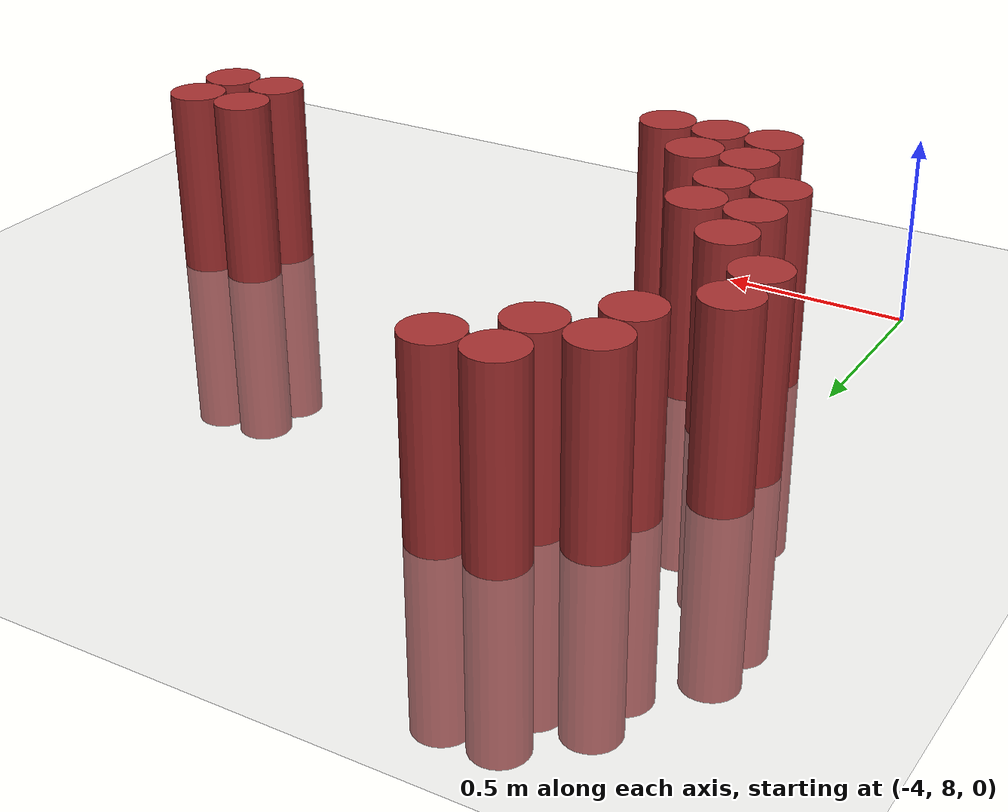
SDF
<sdf version="1.6">
 <world name="default">
  <model name="ground_plane">
   <static>1</static>
   <link name="link">
    <collision name="collision">
     <geometry><plane><normal>0 0 1</normal><size>100 100</size></plane></geometry>
     <surface><friction><ode><mu>100</mu><mu2>50</mu2></ode></friction></surface>
    </collision>
    <visual name="visual">
     <cast_shadows>0</cast_shadows>
     <geometry><plane><normal>0 0 1</normal><size>100 100</size></plane></geometry>
     <material>
      <script><uri>file://media/materials/scripts/gazebo.material</uri><name>Gazebo/Grey</name></script>
     </material>
    </visual>
   </link>
  </model>
  <model name="unit_cylinder_156">
   <static>1</static>
   <pose>-3.975000 8.925000 0.000000 0.000000 0.000000 0.000000</pose>
   <link name="link">
    <inertial>
     <mass>1</mass>
     <inertia><ixx>0.145833</ixx><ixy>0</ixy><ixz>0</ixz><iyy>0.145833</iyy><iyz>0</iyz><izz>0.125</izz></inertia>
    </inertial>
    <collision name="collision">
     <geometry><cylinder><radius>0.075000</radius><length>1</length></cylinder></geometry>
    </collision>
    <visual name="visual">
     <geometry><cylinder><radius>0.075000</radius><length>1</length></cylinder></geometry>
     <material>
      <ambient>0.648000 0.192000 0.192000 1</ambient>
      <diffuse>0.648000 0.192000 0.192000 1</diffuse>
     </material>
     <material>
      <script><name>Gazebo/Grey</name><uri>file://media/materials/scripts/gazebo.material</uri></script>
     </material>
    </visual>
    <sensor name="sensor_contact" type="contact"><contact><collision>collision</collision></contact></sensor>
   </link>
   <plugin filename="gz-sim-touchplugin-system" name="gz::sim::systems::TouchPlugin">
    <target>robot</target>
    <namespace>robot</namespace>
    <time>0.001</time>
    <enabled>true</enabled>
   </plugin>
  </model>
  <model name="unit_cylinder_157">
   <static>1</static>
   <pose>-3.975000 9.075000 0.000000 0.000000 0.000000 0.000000</pose>
   <link name="link">
    <inertial>
     <mass>1</mass>
     <inertia><ixx>0.145833</ixx><ixy>0</ixy><ixz>0</ixz><iyy>0.145833</iyy><iyz>0</iyz><izz>0.125</izz></inertia>
    </inertial>
    <collision name="collision">
     <geometry><cylinder><radius>0.075000</radius><length>1</length></cylinder></geometry>
    </collision>
    <visual name="visual">
     <geometry><cylinder><radius>0.075000</radius><length>1</length></cylinder></geometry>
     <material>
      <ambient>0.648000 0.192000 0.192000 1</ambient>
      <diffuse>0.648000 0.192000 0.192000 1</diffuse>
     </material>
     <material>
      <script><name>Gazebo/Grey</name><uri>file://media/materials/scripts/gazebo.material</uri></script>
     </material>
    </visual>
    <sensor name="sensor_contact" type="contact"><contact><collision>collision</collision></contact></sensor>
   </link>
   <plugin filename="gz-sim-touchplugin-system" name="gz::sim::systems::TouchPlugin">
    <target>robot</target>
    <namespace>robot</namespace>
    <time>0.001</time>
    <enabled>true</enabled>
   </plugin>
  </model>
  <model name="unit_cylinder_161">
   <static>1</static>
   <pose>-3.825000 8.475000 0.000000 0.000000 0.000000 0.000000</pose>
   <link name="link">
    <inertial>
     <mass>1</mass>
     <inertia><ixx>0.145833</ixx><ixy>0</ixy><ixz>0</ixz><iyy>0.145833</iyy><iyz>0</iyz><izz>0.125</izz></inertia>
    </inertial>
    <collision name="collision">
     <geometry><cylinder><radius>0.075000</radius><length>1</length></cylinder></geometry>
    </collision>
    <visual name="visual">
     <geometry><cylinder><radius>0.075000</radius><length>1</length></cylinder></geometry>
     <material>
      <ambient>0.648000 0.192000 0.192000 1</ambient>
      <diffuse>0.648000 0.192000 0.192000 1</diffuse>
     </material>
     <material>
      <script><name>Gazebo/Grey</name><uri>file://media/materials/scripts/gazebo.material</uri></script>
     </material>
    </visual>
    <sensor name="sensor_contact" type="contact"><contact><collision>collision</collision></contact></sensor>
   </link>
   <plugin filename="gz-sim-touchplugin-system" name="gz::sim::systems::TouchPlugin">
    <target>robot</target>
    <namespace>robot</namespace>
    <time>0.001</time>
    <enabled>true</enabled>
   </plugin>
  </model>
  <model name="unit_cylinder_162">
   <static>1</static>
   <pose>-3.825000 8.625000 0.000000 0.000000 0.000000 0.000000</pose>
   <link name="link">
    <inertial>
     <mass>1</mass>
     <inertia><ixx>0.145833</ixx><ixy>0</ixy><ixz>0</ixz><iyy>0.145833</iyy><iyz>0</iyz><izz>0.125</izz></inertia>
    </inertial>
    <collision name="collision">
     <geometry><cylinder><radius>0.075000</radius><length>1</length></cylinder></geometry>
    </collision>
    <visual name="visual">
     <geometry><cylinder><radius>0.075000</radius><length>1</length></cylinder></geometry>
     <material>
      <ambient>0.648000 0.192000 0.192000 1</ambient>
      <diffuse>0.648000 0.192000 0.192000 1</diffuse>
     </material>
     <material>
      <script><name>Gazebo/Grey</name><uri>file://media/materials/scripts/gazebo.material</uri></script>
     </material>
    </visual>
    <sensor name="sensor_contact" type="contact"><contact><collision>collision</collision></contact></sensor>
   </link>
   <plugin filename="gz-sim-touchplugin-system" name="gz::sim::systems::TouchPlugin">
    <target>robot</target>
    <namespace>robot</namespace>
    <time>0.001</time>
    <enabled>true</enabled>
   </plugin>
  </model>
  <model name="unit_cylinder_163">
   <static>1</static>
   <pose>-3.825000 8.775000 0.000000 0.000000 0.000000 0.000000</pose>
   <link name="link">
    <inertial>
     <mass>1</mass>
     <inertia><ixx>0.145833</ixx><ixy>0</ixy><ixz>0</ixz><iyy>0.145833</iyy><iyz>0</iyz><izz>0.125</izz></inertia>
    </inertial>
    <collision name="collision">
     <geometry><cylinder><radius>0.075000</radius><length>1</length></cylinder></geometry>
    </collision>
    <visual name="visual">
     <geometry><cylinder><radius>0.075000</radius><length>1</length></cylinder></geometry>
     <material>
      <ambient>0.648000 0.192000 0.192000 1</ambient>
      <diffuse>0.648000 0.192000 0.192000 1</diffuse>
     </material>
     <material>
      <script><name>Gazebo/Grey</name><uri>file://media/materials/scripts/gazebo.material</uri></script>
     </material>
    </visual>
    <sensor name="sensor_contact" type="contact"><contact><collision>collision</collision></contact></sensor>
   </link>
   <plugin filename="gz-sim-touchplugin-system" name="gz::sim::systems::TouchPlugin">
    <target>robot</target>
    <namespace>robot</namespace>
    <time>0.001</time>
    <enabled>true</enabled>
   </plugin>
  </model>
  <model name="unit_cylinder_164">
   <static>1</static>
   <pose>-3.825000 9.225000 0.000000 0.000000 0.000000 0.000000</pose>
   <link name="link">
    <inertial>
     <mass>1</mass>
     <inertia><ixx>0.145833</ixx><ixy>0</ixy><ixz>0</ixz><iyy>0.145833</iyy><iyz>0</iyz><izz>0.125</izz></inertia>
    </inertial>
    <collision name="collision">
     <geometry><cylinder><radius>0.075000</radius><length>1</length></cylinder></geometry>
    </collision>
    <visual name="visual">
     <geometry><cylinder><radius>0.075000</radius><length>1</length></cylinder></geometry>
     <material>
      <ambient>0.648000 0.192000 0.192000 1</ambient>
      <diffuse>0.648000 0.192000 0.192000 1</diffuse>
     </material>
     <material>
      <script><name>Gazebo/Grey</name><uri>file://media/materials/scripts/gazebo.material</uri></script>
     </material>
    </visual>
    <sensor name="sensor_contact" type="contact"><contact><collision>collision</collision></contact></sensor>
   </link>
   <plugin filename="gz-sim-touchplugin-system" name="gz::sim::systems::TouchPlugin">
    <target>robot</target>
    <namespace>robot</namespace>
    <time>0.001</time>
    <enabled>true</enabled>
   </plugin>
  </model>
  <model name="unit_cylinder_165">
   <static>1</static>
   <pose>-3.825000 9.375000 0.000000 0.000000 0.000000 0.000000</pose>
   <link name="link">
    <inertial>
     <mass>1</mass>
     <inertia><ixx>0.145833</ixx><ixy>0</ixy><ixz>0</ixz><iyy>0.145833</iyy><iyz>0</iyz><izz>0.125</izz></inertia>
    </inertial>
    <collision name="collision">
     <geometry><cylinder><radius>0.075000</radius><length>1</length></cylinder></geometry>
    </collision>
    <visual name="visual">
     <geometry><cylinder><radius>0.075000</radius><length>1</length></cylinder></geometry>
     <material>
      <ambient>0.648000 0.192000 0.192000 1</ambient>
      <diffuse>0.648000 0.192000 0.192000 1</diffuse>
     </material>
     <material>
      <script><name>Gazebo/Grey</name><uri>file://media/materials/scripts/gazebo.material</uri></script>
     </material>
    </visual>
    <sensor name="sensor_contact" type="contact"><contact><collision>collision</collision></contact></sensor>
   </link>
   <plugin filename="gz-sim-touchplugin-system" name="gz::sim::systems::TouchPlugin">
    <target>robot</target>
    <namespace>robot</namespace>
    <time>0.001</time>
    <enabled>true</enabled>
   </plugin>
  </model>
  <model name="unit_cylinder_169">
   <static>1</static>
   <pose>-3.675000 8.175000 0.000000 0.000000 0.000000 0.000000</pose>
   <link name="link">
    <inertial>
     <mass>1</mass>
     <inertia><ixx>0.145833</ixx><ixy>0</ixy><ixz>0</ixz><iyy>0.145833</iyy><iyz>0</iyz><izz>0.125</izz></inertia>
    </inertial>
    <collision name="collision">
     <geometry><cylinder><radius>0.075000</radius><length>1</length></cylinder></geometry>
    </collision>
    <visual name="visual">
     <geometry><cylinder><radius>0.075000</radius><length>1</length></cylinder></geometry>
     <material>
      <ambient>0.648000 0.192000 0.192000 1</ambient>
      <diffuse>0.648000 0.192000 0.192000 1</diffuse>
     </material>
     <material>
      <script><name>Gazebo/Grey</name><uri>file://media/materials/scripts/gazebo.material</uri></script>
     </material>
    </visual>
    <sensor name="sensor_contact" type="contact"><contact><collision>collision</collision></contact></sensor>
   </link>
   <plugin filename="gz-sim-touchplugin-system" name="gz::sim::systems::TouchPlugin">
    <target>robot</target>
    <namespace>robot</namespace>
    <time>0.001</time>
    <enabled>true</enabled>
   </plugin>
  </model>
  <model name="unit_cylinder_170">
   <static>1</static>
   <pose>-3.675000 8.325000 0.000000 0.000000 0.000000 0.000000</pose>
   <link name="link">
    <inertial>
     <mass>1</mass>
     <inertia><ixx>0.145833</ixx><ixy>0</ixy><ixz>0</ixz><iyy>0.145833</iyy><iyz>0</iyz><izz>0.125</izz></inertia>
    </inertial>
    <collision name="collision">
     <geometry><cylinder><radius>0.075000</radius><length>1</length></cylinder></geometry>
    </collision>
    <visual name="visual">
     <geometry><cylinder><radius>0.075000</radius><length>1</length></cylinder></geometry>
     <material>
      <ambient>0.648000 0.192000 0.192000 1</ambient>
      <diffuse>0.648000 0.192000 0.192000 1</diffuse>
     </material>
     <material>
      <script><name>Gazebo/Grey</name><uri>file://media/materials/scripts/gazebo.material</uri></script>
     </material>
    </visual>
    <sensor name="sensor_contact" type="contact"><contact><collision>collision</collision></contact></sensor>
   </link>
   <plugin filename="gz-sim-touchplugin-system" name="gz::sim::systems::TouchPlugin">
    <target>robot</target>
    <namespace>robot</namespace>
    <time>0.001</time>
    <enabled>true</enabled>
   </plugin>
  </model>
  <model name="unit_cylinder_171">
   <static>1</static>
   <pose>-3.675000 8.475000 0.000000 0.000000 0.000000 0.000000</pose>
   <link name="link">
    <inertial>
     <mass>1</mass>
     <inertia><ixx>0.145833</ixx><ixy>0</ixy><ixz>0</ixz><iyy>0.145833</iyy><iyz>0</iyz><izz>0.125</izz></inertia>
    </inertial>
    <collision name="collision">
     <geometry><cylinder><radius>0.075000</radius><length>1</length></cylinder></geometry>
    </collision>
    <visual name="visual">
     <geometry><cylinder><radius>0.075000</radius><length>1</length></cylinder></geometry>
     <material>
      <ambient>0.648000 0.192000 0.192000 1</ambient>
      <diffuse>0.648000 0.192000 0.192000 1</diffuse>
     </material>
     <material>
      <script><name>Gazebo/Grey</name><uri>file://media/materials/scripts/gazebo.material</uri></script>
     </material>
    </visual>
    <sensor name="sensor_contact" type="contact"><contact><collision>collision</collision></contact></sensor>
   </link>
   <plugin filename="gz-sim-touchplugin-system" name="gz::sim::systems::TouchPlugin">
    <target>robot</target>
    <namespace>robot</namespace>
    <time>0.001</time>
    <enabled>true</enabled>
   </plugin>
  </model>
  <model name="unit_cylinder_172">
   <static>1</static>
   <pose>-3.675000 8.625000 0.000000 0.000000 0.000000 0.000000</pose>
   <link name="link">
    <inertial>
     <mass>1</mass>
     <inertia><ixx>0.145833</ixx><ixy>0</ixy><ixz>0</ixz><iyy>0.145833</iyy><iyz>0</iyz><izz>0.125</izz></inertia>
    </inertial>
    <collision name="collision">
     <geometry><cylinder><radius>0.075000</radius><length>1</length></cylinder></geometry>
    </collision>
    <visual name="visual">
     <geometry><cylinder><radius>0.075000</radius><length>1</length></cylinder></geometry>
     <material>
      <ambient>0.648000 0.192000 0.192000 1</ambient>
      <diffuse>0.648000 0.192000 0.192000 1</diffuse>
     </material>
     <material>
      <script><name>Gazebo/Grey</name><uri>file://media/materials/scripts/gazebo.material</uri></script>
     </material>
    </visual>
    <sensor name="sensor_contact" type="contact"><contact><collision>collision</collision></contact></sensor>
   </link>
   <plugin filename="gz-sim-touchplugin-system" name="gz::sim::systems::TouchPlugin">
    <target>robot</target>
    <namespace>robot</namespace>
    <time>0.001</time>
    <enabled>true</enabled>
   </plugin>
  </model>
  <model name="unit_cylinder_173">
   <static>1</static>
   <pose>-3.675000 9.375000 0.000000 0.000000 0.000000 0.000000</pose>
   <link name="link">
    <inertial>
     <mass>1</mass>
     <inertia><ixx>0.145833</ixx><ixy>0</ixy><ixz>0</ixz><iyy>0.145833</iyy><iyz>0</iyz><izz>0.125</izz></inertia>
    </inertial>
    <collision name="collision">
     <geometry><cylinder><radius>0.075000</radius><length>1</length></cylinder></geometry>
    </collision>
    <visual name="visual">
     <geometry><cylinder><radius>0.075000</radius><length>1</length></cylinder></geometry>
     <material>
      <ambient>0.648000 0.192000 0.192000 1</ambient>
      <diffuse>0.648000 0.192000 0.192000 1</diffuse>
     </material>
     <material>
      <script><name>Gazebo/Grey</name><uri>file://media/materials/scripts/gazebo.material</uri></script>
     </material>
    </visual>
    <sensor name="sensor_contact" type="contact"><contact><collision>collision</collision></contact></sensor>
   </link>
   <plugin filename="gz-sim-touchplugin-system" name="gz::sim::systems::TouchPlugin">
    <target>robot</target>
    <namespace>robot</namespace>
    <time>0.001</time>
    <enabled>true</enabled>
   </plugin>
  </model>
  <model name="unit_cylinder_174">
   <static>1</static>
   <pose>-3.675000 9.525000 0.000000 0.000000 0.000000 0.000000</pose>
   <link name="link">
    <inertial>
     <mass>1</mass>
     <inertia><ixx>0.145833</ixx><ixy>0</ixy><ixz>0</ixz><iyy>0.145833</iyy><iyz>0</iyz><izz>0.125</izz></inertia>
    </inertial>
    <collision name="collision">
     <geometry><cylinder><radius>0.075000</radius><length>1</length></cylinder></geometry>
    </collision>
    <visual name="visual">
     <geometry><cylinder><radius>0.075000</radius><length>1</length></cylinder></geometry>
     <material>
      <ambient>0.648000 0.192000 0.192000 1</ambient>
      <diffuse>0.648000 0.192000 0.192000 1</diffuse>
     </material>
     <material>
      <script><name>Gazebo/Grey</name><uri>file://media/materials/scripts/gazebo.material</uri></script>
     </material>
    </visual>
    <sensor name="sensor_contact" type="contact"><contact><collision>collision</collision></contact></sensor>
   </link>
   <plugin filename="gz-sim-touchplugin-system" name="gz::sim::systems::TouchPlugin">
    <target>robot</target>
    <namespace>robot</namespace>
    <time>0.001</time>
    <enabled>true</enabled>
   </plugin>
  </model>
  <model name="unit_cylinder_180">
   <static>1</static>
   <pose>-3.525000 8.175000 0.000000 0.000000 0.000000 0.000000</pose>
   <link name="link">
    <inertial>
     <mass>1</mass>
     <inertia><ixx>0.145833</ixx><ixy>0</ixy><ixz>0</ixz><iyy>0.145833</iyy><iyz>0</iyz><izz>0.125</izz></inertia>
    </inertial>
    <collision name="collision">
     <geometry><cylinder><radius>0.075000</radius><length>1</length></cylinder></geometry>
    </collision>
    <visual name="visual">
     <geometry><cylinder><radius>0.075000</radius><length>1</length></cylinder></geometry>
     <material>
      <ambient>0.648000 0.192000 0.192000 1</ambient>
      <diffuse>0.648000 0.192000 0.192000 1</diffuse>
     </material>
     <material>
      <script><name>Gazebo/Grey</name><uri>file://media/materials/scripts/gazebo.material</uri></script>
     </material>
    </visual>
    <sensor name="sensor_contact" type="contact"><contact><collision>collision</collision></contact></sensor>
   </link>
   <plugin filename="gz-sim-touchplugin-system" name="gz::sim::systems::TouchPlugin">
    <target>robot</target>
    <namespace>robot</namespace>
    <time>0.001</time>
    <enabled>true</enabled>
   </plugin>
  </model>
  <model name="unit_cylinder_181">
   <static>1</static>
   <pose>-3.525000 8.325000 0.000000 0.000000 0.000000 0.000000</pose>
   <link name="link">
    <inertial>
     <mass>1</mass>
     <inertia><ixx>0.145833</ixx><ixy>0</ixy><ixz>0</ixz><iyy>0.145833</iyy><iyz>0</iyz><izz>0.125</izz></inertia>
    </inertial>
    <collision name="collision">
     <geometry><cylinder><radius>0.075000</radius><length>1</length></cylinder></geometry>
    </collision>
    <visual name="visual">
     <geometry><cylinder><radius>0.075000</radius><length>1</length></cylinder></geometry>
     <material>
      <ambient>0.648000 0.192000 0.192000 1</ambient>
      <diffuse>0.648000 0.192000 0.192000 1</diffuse>
     </material>
     <material>
      <script><name>Gazebo/Grey</name><uri>file://media/materials/scripts/gazebo.material</uri></script>
     </material>
    </visual>
    <sensor name="sensor_contact" type="contact"><contact><collision>collision</collision></contact></sensor>
   </link>
   <plugin filename="gz-sim-touchplugin-system" name="gz::sim::systems::TouchPlugin">
    <target>robot</target>
    <namespace>robot</namespace>
    <time>0.001</time>
    <enabled>true</enabled>
   </plugin>
  </model>
  <model name="unit_cylinder_182">
   <static>1</static>
   <pose>-3.525000 9.525000 0.000000 0.000000 0.000000 0.000000</pose>
   <link name="link">
    <inertial>
     <mass>1</mass>
     <inertia><ixx>0.145833</ixx><ixy>0</ixy><ixz>0</ixz><iyy>0.145833</iyy><iyz>0</iyz><izz>0.125</izz></inertia>
    </inertial>
    <collision name="collision">
     <geometry><cylinder><radius>0.075000</radius><length>1</length></cylinder></geometry>
    </collision>
    <visual name="visual">
     <geometry><cylinder><radius>0.075000</radius><length>1</length></cylinder></geometry>
     <material>
      <ambient>0.648000 0.192000 0.192000 1</ambient>
      <diffuse>0.648000 0.192000 0.192000 1</diffuse>
     </material>
     <material>
      <script><name>Gazebo/Grey</name><uri>file://media/materials/scripts/gazebo.material</uri></script>
     </material>
    </visual>
    <sensor name="sensor_contact" type="contact"><contact><collision>collision</collision></contact></sensor>
   </link>
   <plugin filename="gz-sim-touchplugin-system" name="gz::sim::systems::TouchPlugin">
    <target>robot</target>
    <namespace>robot</namespace>
    <time>0.001</time>
    <enabled>true</enabled>
   </plugin>
  </model>
  <model name="unit_cylinder_184">
   <static>1</static>
   <pose>-3.375000 8.175000 0.000000 0.000000 0.000000 0.000000</pose>
   <link name="link">
    <inertial>
     <mass>1</mass>
     <inertia><ixx>0.145833</ixx><ixy>0</ixy><ixz>0</ixz><iyy>0.145833</iyy><iyz>0</iyz><izz>0.125</izz></inertia>
    </inertial>
    <collision name="collision">
     <geometry><cylinder><radius>0.075000</radius><length>1</length></cylinder></geometry>
    </collision>
    <visual name="visual">
     <geometry><cylinder><radius>0.075000</radius><length>1</length></cylinder></geometry>
     <material>
      <ambient>0.648000 0.192000 0.192000 1</ambient>
      <diffuse>0.648000 0.192000 0.192000 1</diffuse>
     </material>
     <material>
      <script><name>Gazebo/Grey</name><uri>file://media/materials/scripts/gazebo.material</uri></script>
     </material>
    </visual>
    <sensor name="sensor_contact" type="contact"><contact><collision>collision</collision></contact></sensor>
   </link>
   <plugin filename="gz-sim-touchplugin-system" name="gz::sim::systems::TouchPlugin">
    <target>robot</target>
    <namespace>robot</namespace>
    <time>0.001</time>
    <enabled>true</enabled>
   </plugin>
  </model>
  <model name="unit_cylinder_194">
   <static>1</static>
   <pose>-2.325000 8.475000 0.000000 0.000000 0.000000 0.000000</pose>
   <link name="link">
    <inertial>
     <mass>1</mass>
     <inertia><ixx>0.145833</ixx><ixy>0</ixy><ixz>0</ixz><iyy>0.145833</iyy><iyz>0</iyz><izz>0.125</izz></inertia>
    </inertial>
    <collision name="collision">
     <geometry><cylinder><radius>0.075000</radius><length>1</length></cylinder></geometry>
    </collision>
    <visual name="visual">
     <geometry><cylinder><radius>0.075000</radius><length>1</length></cylinder></geometry>
     <material>
      <ambient>0.648000 0.192000 0.192000 1</ambient>
      <diffuse>0.648000 0.192000 0.192000 1</diffuse>
     </material>
     <material>
      <script><name>Gazebo/Grey</name><uri>file://media/materials/scripts/gazebo.material</uri></script>
     </material>
    </visual>
    <sensor name="sensor_contact" type="contact"><contact><collision>collision</collision></contact></sensor>
   </link>
   <plugin filename="gz-sim-touchplugin-system" name="gz::sim::systems::TouchPlugin">
    <target>robot</target>
    <namespace>robot</namespace>
    <time>0.001</time>
    <enabled>true</enabled>
   </plugin>
  </model>
  <model name="unit_cylinder_195">
   <static>1</static>
   <pose>-2.325000 8.625000 0.000000 0.000000 0.000000 0.000000</pose>
   <link name="link">
    <inertial>
     <mass>1</mass>
     <inertia><ixx>0.145833</ixx><ixy>0</ixy><ixz>0</ixz><iyy>0.145833</iyy><iyz>0</iyz><izz>0.125</izz></inertia>
    </inertial>
    <collision name="collision">
     <geometry><cylinder><radius>0.075000</radius><length>1</length></cylinder></geometry>
    </collision>
    <visual name="visual">
     <geometry><cylinder><radius>0.075000</radius><length>1</length></cylinder></geometry>
     <material>
      <ambient>0.648000 0.192000 0.192000 1</ambient>
      <diffuse>0.648000 0.192000 0.192000 1</diffuse>
     </material>
     <material>
      <script><name>Gazebo/Grey</name><uri>file://media/materials/scripts/gazebo.material</uri></script>
     </material>
    </visual>
    <sensor name="sensor_contact" type="contact"><contact><collision>collision</collision></contact></sensor>
   </link>
   <plugin filename="gz-sim-touchplugin-system" name="gz::sim::systems::TouchPlugin">
    <target>robot</target>
    <namespace>robot</namespace>
    <time>0.001</time>
    <enabled>true</enabled>
   </plugin>
  </model>
  <model name="unit_cylinder_200">
   <static>1</static>
   <pose>-2.175000 8.475000 0.000000 0.000000 0.000000 0.000000</pose>
   <link name="link">
    <inertial>
     <mass>1</mass>
     <inertia><ixx>0.145833</ixx><ixy>0</ixy><ixz>0</ixz><iyy>0.145833</iyy><iyz>0</iyz><izz>0.125</izz></inertia>
    </inertial>
    <collision name="collision">
     <geometry><cylinder><radius>0.075000</radius><length>1</length></cylinder></geometry>
    </collision>
    <visual name="visual">
     <geometry><cylinder><radius>0.075000</radius><length>1</length></cylinder></geometry>
     <material>
      <ambient>0.648000 0.192000 0.192000 1</ambient>
      <diffuse>0.648000 0.192000 0.192000 1</diffuse>
     </material>
     <material>
      <script><name>Gazebo/Grey</name><uri>file://media/materials/scripts/gazebo.material</uri></script>
     </material>
    </visual>
    <sensor name="sensor_contact" type="contact"><contact><collision>collision</collision></contact></sensor>
   </link>
   <plugin filename="gz-sim-touchplugin-system" name="gz::sim::systems::TouchPlugin">
    <target>robot</target>
    <namespace>robot</namespace>
    <time>0.001</time>
    <enabled>true</enabled>
   </plugin>
  </model>
  <model name="unit_cylinder_201">
   <static>1</static>
   <pose>-2.175000 8.625000 0.000000 0.000000 0.000000 0.000000</pose>
   <link name="link">
    <inertial>
     <mass>1</mass>
     <inertia><ixx>0.145833</ixx><ixy>0</ixy><ixz>0</ixz><iyy>0.145833</iyy><iyz>0</iyz><izz>0.125</izz></inertia>
    </inertial>
    <collision name="collision">
     <geometry><cylinder><radius>0.075000</radius><length>1</length></cylinder></geometry>
    </collision>
    <visual name="visual">
     <geometry><cylinder><radius>0.075000</radius><length>1</length></cylinder></geometry>
     <material>
      <ambient>0.648000 0.192000 0.192000 1</ambient>
      <diffuse>0.648000 0.192000 0.192000 1</diffuse>
     </material>
     <material>
      <script><name>Gazebo/Grey</name><uri>file://media/materials/scripts/gazebo.material</uri></script>
     </material>
    </visual>
    <sensor name="sensor_contact" type="contact"><contact><collision>collision</collision></contact></sensor>
   </link>
   <plugin filename="gz-sim-touchplugin-system" name="gz::sim::systems::TouchPlugin">
    <target>robot</target>
    <namespace>robot</namespace>
    <time>0.001</time>
    <enabled>true</enabled>
   </plugin>
  </model>
 </world>
</sdf>
